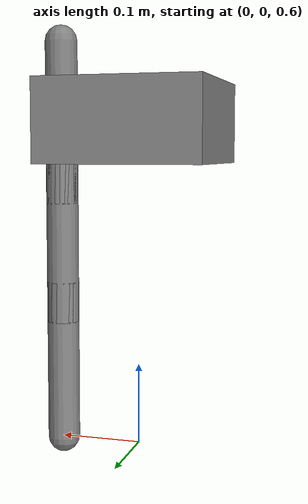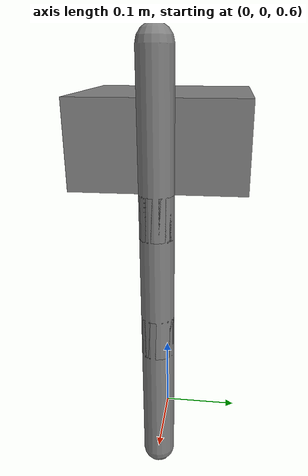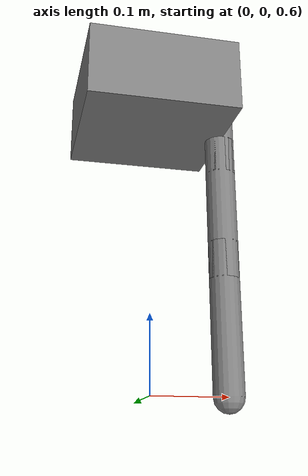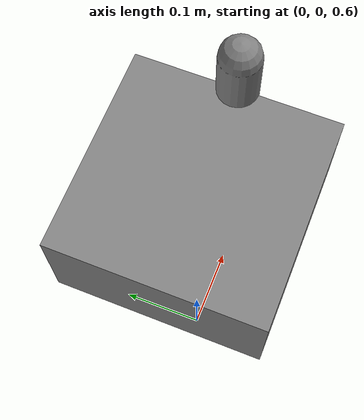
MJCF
<!-- 测试 fixture：故意加入 RobotModel 之外的 j3 及其执行器，验证多余执行器时启动失败。 -->
<mujoco model="extra_actuator">
  <worldbody>
    <body name="base" pos="0 0 1">
      <freejoint/>
      <site name="imu" pos="0 0 0"/>
      <geom type="box" size="0.1 0.1 0.05" mass="1"/>
      <body name="link1" pos="0.1 0 0">
        <joint name="j1" axis="0 1 0"/>
        <geom type="capsule" size="0.02 0.1" mass="0.1"/>
        <body name="link2" pos="0 0 -0.15">
          <joint name="j2" axis="0 1 0"/>
          <geom type="capsule" size="0.02 0.1" mass="0.1"/>
          <body name="link3" pos="0 0 -0.15">
            <joint name="j3" axis="0 1 0"/>
            <geom type="capsule" size="0.02 0.1" mass="0.1"/>
          </body>
        </body>
      </body>
    </body>
  </worldbody>
  <actuator>
    <motor joint="j1"/>
    <motor joint="j2"/>
    <motor joint="j3"/>
  </actuator>
  <sensor>
    <framequat name="imu_quat" objtype="site" objname="imu"/>
    <gyro name="imu_gyro" site="imu"/>
    <accelerometer name="imu_acc" site="imu"/>
  </sensor>
</mujoco>
